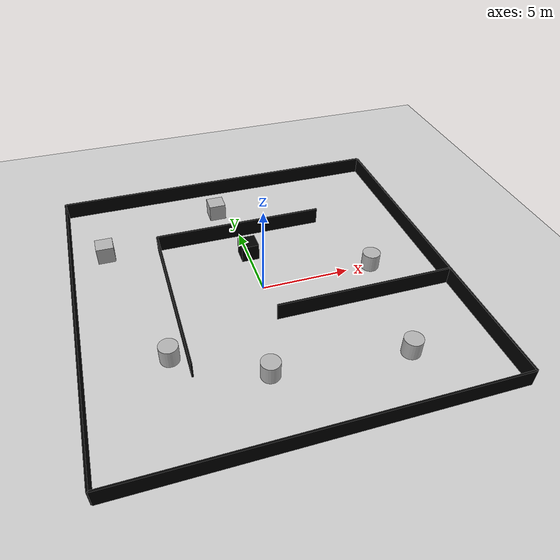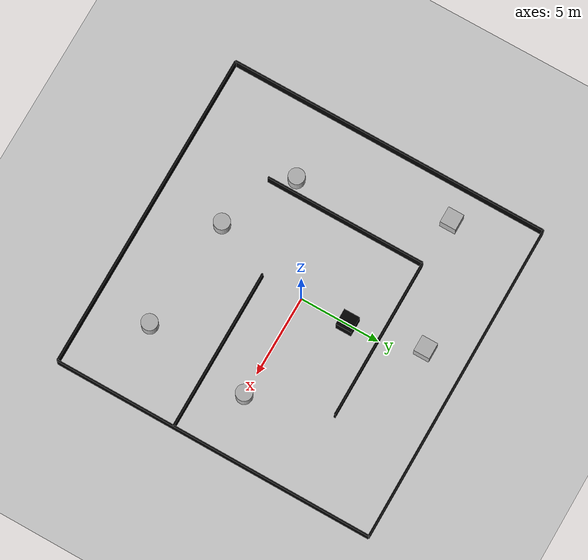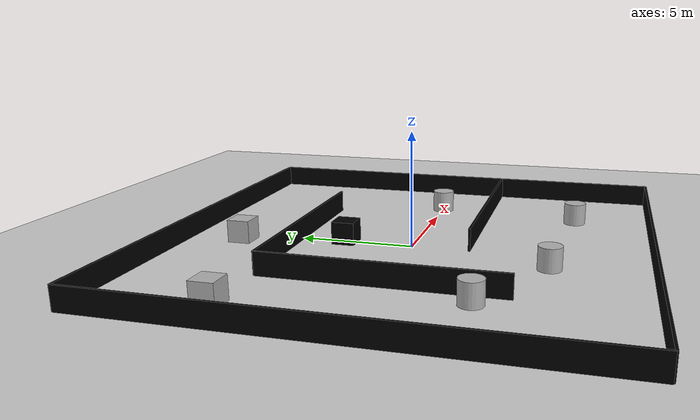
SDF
<sdf version='1.10'>
  <world name='empty_world'>
    <physics name='1ms' type='ignored'>
      <max_step_size>0.001</max_step_size>
      <real_time_factor>1</real_time_factor>
      <real_time_update_rate>1000</real_time_update_rate>
      <contact_surface_layer>0.001</contact_surface_layer>
    </physics>
    <plugin name='gz::sim::systems::Physics' filename='gz-sim-physics-system'/>
    <plugin name='gz::sim::systems::Sensors' filename='gz-sim-sensors-system'>
      <render_engine>ogre2</render_engine>
    </plugin>
    <plugin name="gz::sim::systems::Imu" filename="gz-sim-imu-system" />
    <plugin name='gz::sim::systems::SceneBroadcaster' filename='gz-sim-scene-broadcaster-system'/>
    <plugin name='gz::sim::systems::UserCommands' filename='gz-sim-user-commands-system'/>

    <gravity>0 0 -9.8000000000000007</gravity>
    <magnetic_field>5.5644999999999998e-06 2.2875799999999999e-05 -4.2388400000000002e-05</magnetic_field>
    <atmosphere type='adiabatic'/>
    <scene>
      <ambient>0.400000006 0.400000006 0.400000006 1</ambient>
      <background>0.699999988 0.699999988 0.699999988 1</background>
      <shadows>true</shadows>
    </scene>
    <model name='ground_plane'>
      <static>true</static>
      <link name='link'>
        <collision name='collision'>
          <geometry>
            <plane>
              <normal>0 0 1</normal>
              <size>100 100</size>
            </plane>
          </geometry>
        <surface>
          <friction>
            <ode>
              <mu>100</mu>
              <mu2>100</mu2>
            </ode>
          </friction>
        </surface>
        </collision>
        <visual name='visual'>
          <geometry>
            <plane>
              <normal>0 0 1</normal>
              <size>100 100</size>
            </plane>
          </geometry>
          <material>
            <ambient>0.800000012 0.800000012 0.800000012 1</ambient>
            <diffuse>0.800000012 0.800000012 0.800000012 1</diffuse>
            <specular>0.800000012 0.800000012 0.800000012 1</specular>
          </material>
        </visual>
        <pose>0 0 0 0 0 0</pose>
        <inertial>
          <pose>0 0 0 0 0 0</pose>
          <mass>1</mass>
          <inertia>
            <ixx>1</ixx>
            <ixy>0</ixy>
            <ixz>0</ixz>
            <iyy>1</iyy>
            <iyz>0</iyz>
            <izz>1</izz>
          </inertia>
        </inertial>
        <enable_wind>false</enable_wind>
      </link>
      <pose>0 0 0 0 0 0</pose>
      <self_collide>false</self_collide>
    </model>

    <model name='right_wall'>
      <pose>0 -10 0.5 0 0 0</pose>
      <link name='box_link'>
        <inertial>
          <inertia>
            <ixx>0.16666</ixx>
            <ixy>0</ixy>
            <ixz>0</ixz>
            <iyy>0.16666</iyy>
            <iyz>0</iyz>
            <izz>0.16666</izz>
          </inertia>
          <mass>1000</mass>
          <pose>0 0 0 0 0 0</pose>
        </inertial>
        <collision name='box_collision'>
          <geometry>
            <box>
              <size>20 0.10000000000000001 1</size>
            </box>
          </geometry>
          <surface>
            <friction>
              <ode/>
            </friction>
            <bounce/>
            <contact/>
          </surface>
        </collision>
        <visual name='box_visual'>
          <geometry>
            <box>
              <size>20 0.10000000000000001 1</size>
            </box>
          </geometry>
          <material>
            <ambient>0 0 0 1</ambient>
            <diffuse>0 0 0 1</diffuse>
            <specular>0 0 0 1</specular>
          </material>
        </visual>
        <pose>0 0 0 0 0 0</pose>
        <enable_wind>false</enable_wind>
      </link>
      <static>true</static>
      <self_collide>false</self_collide>
    </model>

    <model name='left_wall'>
      <pose>0 10 0.5 0 0 0</pose>
      <link name='box_link'>
        <inertial>
          <inertia>
            <ixx>0.16666</ixx>
            <ixy>0</ixy>
            <ixz>0</ixz>
            <iyy>0.16666</iyy>
            <iyz>0</iyz>
            <izz>0.16666</izz>
          </inertia>
          <mass>1000</mass>
          <pose>0 0 0 0 0 0</pose>
        </inertial>
        <collision name='box_collision'>
          <geometry>
            <box>
              <size>20 0.10000000000000001 1</size>
            </box>
          </geometry>
          <surface>
            <friction>
              <ode/>
            </friction>
            <bounce/>
            <contact/>
          </surface>
        </collision>
        <visual name='box_visual'>
          <geometry>
            <box>
              <size>20 0.10000000000000001 1</size>
            </box>
          </geometry>
          <material>
            <ambient>0 0 0 1</ambient>
            <diffuse>0 0 0 1</diffuse>
            <specular>0 0 0 1</specular>
          </material>
        </visual>
        <pose>0 0 0 0 0 0</pose>
        <enable_wind>false</enable_wind>
      </link>
      <static>true</static>
      <self_collide>false</self_collide>
    </model>

    <model name='north_wall'>
      <pose>10 0 0.5 0 0 1.5699999999999998</pose>
      <link name='box_link'>
        <inertial>
          <inertia>
            <ixx>0.16666</ixx>
            <ixy>0</ixy>
            <ixz>0</ixz>
            <iyy>0.16666</iyy>
            <iyz>0</iyz>
            <izz>0.16666</izz>
          </inertia>
          <mass>1</mass>
          <pose>0 0 0 0 0 0</pose>
        </inertial>
        <collision name='box_collision'>
          <geometry>
            <box>
              <size>20 0.10000000000000001 1</size>
            </box>
          </geometry>
          <surface>
            <friction>
              <ode/>
            </friction>
            <bounce/>
            <contact/>
          </surface>
        </collision>
        <visual name='box_visual'>
          <geometry>
            <box>
              <size>20 0.10000000000000001 1</size>
            </box>
          </geometry>
          <material>
            <ambient>0 0 0 1</ambient>
            <diffuse>0 0 0 1</diffuse>
            <specular>0 0 0 1</specular>
          </material>
        </visual>
        <pose>0 0 0 0 0 0</pose>
        <enable_wind>false</enable_wind>
      </link>
      <static>true</static>
      <self_collide>false</self_collide>
    </model>

    <model name='south_wall'>
      <pose>-10 0 0.5 0 0 1.5699999999999998</pose>
      <link name='box_link'>
        <inertial>
          <inertia>
            <ixx>0.16666</ixx>
            <ixy>0</ixy>
            <ixz>0</ixz>
            <iyy>0.16666</iyy>
            <iyz>0</iyz>
            <izz>0.16666</izz>
          </inertia>
          <mass>1000</mass>
          <pose>0 0 0 0 0 0</pose>
        </inertial>
        <collision name='box_collision'>
          <geometry>
            <box>
              <size>20 0.10000000000000001 1</size>
            </box>
          </geometry>
          <surface>
            <friction>
              <ode/>
            </friction>
            <bounce/>
            <contact/>
          </surface>
        </collision>
        <visual name='box_visual'>
          <geometry>
            <box>
              <size>20 0.10000000000000001 1</size>
            </box>
          </geometry>
          <material>
            <ambient>0 0 0 1</ambient>
            <diffuse>0 0 0 1</diffuse>
            <specular>0 0 0 1</specular>
          </material>
        </visual>
        <pose>0 0 0 0 0 0</pose>
        <enable_wind>false</enable_wind>
      </link>
      <static>true</static>
      <self_collide>false</self_collide>
    </model>

    <model name='wall_1'>
      <pose>-5 0 0.5 0 0 1.5699999999999998</pose>
      <link name='box_link'>
        <inertial>
          <inertia>
            <ixx>0.16666</ixx>
            <ixy>0</ixy>
            <ixz>0</ixz>
            <iyy>0.16666</iyy>
            <iyz>0</iyz>
            <izz>0.16666</izz>
          </inertia>
          <mass>1000</mass>
          <pose>0 0 0 0 0 0</pose>
        </inertial>
        <collision name='box_collision'>
          <geometry>
            <box>
              <size>10 0.10000000000000001 1</size>
            </box>
          </geometry>
          <surface>
            <friction>
              <ode/>
            </friction>
            <bounce/>
            <contact/>
          </surface>
        </collision>
        <visual name='box_visual'>
          <geometry>
            <box>
              <size>10 0.10000000000000001 1</size>
            </box>
          </geometry>
          <material>
            <ambient>0 0 0 1</ambient>
            <diffuse>0 0 0 1</diffuse>
            <specular>0 0 0 1</specular>
          </material>
        </visual>
        <pose>0 0 0 0 0 0</pose>
        <enable_wind>false</enable_wind>
      </link>
      <static>true</static>
      <self_collide>false</self_collide>
    </model>
    <model name='wall_2'>
      <pose>0 5 0.5 0 0 0</pose>
      <link name='box_link'>
        <inertial>
          <inertia>
            <ixx>0.16666</ixx>
            <ixy>0</ixy>
            <ixz>0</ixz>
            <iyy>0.16666</iyy>
            <iyz>0</iyz>
            <izz>0.16666</izz>
          </inertia>
          <mass>1000</mass>
          <pose>0 0 0 0 0 0</pose>
        </inertial>
        <collision name='box_collision'>
          <geometry>
            <box>
              <size>10 0.10000000000000001 1</size>
            </box>
          </geometry>
          <surface>
            <friction>
              <ode/>
            </friction>
            <bounce/>
            <contact/>
          </surface>
        </collision>
        <visual name='box_visual'>
          <geometry>
            <box>
              <size>10 0.10000000000000001 1</size>
            </box>
          </geometry>
          <material>
            <ambient>0 0 0 1</ambient>
            <diffuse>0 0 0 1</diffuse>
            <specular>0 0 0 1</specular>
          </material>
        </visual>
        <pose>0 0 0 0 0 0</pose>
        <enable_wind>false</enable_wind>
      </link>
      <static>true</static>
      <self_collide>false</self_collide>
    </model>
    <model name='wall_3'>
      <pose>5 -2.5 0.5 0 0 0</pose>
      <link name='box_link'>
        <inertial>
          <inertia>
            <ixx>0.16666</ixx>
            <ixy>0</ixy>
            <ixz>0</ixz>
            <iyy>0.16666</iyy>
            <iyz>0</iyz>
            <izz>0.16666</izz>
          </inertia>
          <mass>1000</mass>
          <pose>0 0 0 0 0 0</pose>
        </inertial>
        <collision name='box_collision'>
          <geometry>
            <box>
              <size>10 0.10000000000000001 1</size>
            </box>
          </geometry>
          <surface>
            <friction>
              <ode/>
            </friction>
            <bounce/>
            <contact/>
          </surface>
        </collision>
        <visual name='box_visual'>
          <geometry>
            <box>
              <size>10 0.10000000000000001 1</size>
            </box>
          </geometry>
          <material>
            <ambient>0 0 0 1</ambient>
            <diffuse>0 0 0 1</diffuse>
            <specular>0 0 0 1</specular>
          </material>
        </visual>
        <pose>0 0 0 0 0 0</pose>
        <enable_wind>false</enable_wind>
      </link>
      <static>true</static>
      <self_collide>false</self_collide>
    </model>
    <model name='box1'>
      <pose>0 3 0.5 0 0 0</pose>
      <link name='box_link'>
        <inertial>
          <inertia>
            <ixx>0.16666</ixx>
            <ixy>0</ixy>
            <ixz>0</ixz>
            <iyy>0.16666</iyy>
            <iyz>0</iyz>
            <izz>0.16666</izz>
          </inertia>
          <mass>1000</mass>
          <pose>0 0 0 0 0 0</pose>
        </inertial>
        <collision name='box_collision'>
          <geometry>
            <box>
              <size>1 1 1</size>
            </box>
          </geometry>
          <surface>
            <friction>
              <ode/>
            </friction>
            <bounce/>
            <contact/>
          </surface>
        </collision>
        <visual name='box_visual'>
          <geometry>
            <box>
              <size>1 1 1</size>
            </box>
          </geometry>
          <material>
            <ambient>0 0 0 1</ambient>
            <diffuse>0 0 0 1</diffuse>
            <specular>0 0 0 1</specular>
          </material>
        </visual>
        <pose>0 0 0 0 0 0</pose>
        <enable_wind>false</enable_wind>
      </link>
      <static>true</static>
      <self_collide>false</self_collide>
    </model>
    <model name='cylinder'>
      <pose>6.429601041310411 -0.0052366549875297874 0.5 0 0 0</pose>
      <link name='cylinder_link'>
        <inertial>
          <inertia>
            <ixx>0.14580000000000001</ixx>
            <ixy>0</ixy>
            <ixz>0</ixz>
            <iyy>0.14580000000000001</iyy>
            <iyz>0</iyz>
            <izz>0.125</izz>
          </inertia>
          <mass>1000</mass>
          <pose>0 0 0 0 0 0</pose>
        </inertial>
        <collision name='cylinder_collision'>
          <geometry>
            <cylinder>
              <radius>0.5</radius>
              <length>1</length>
            </cylinder>
          </geometry>
          <surface>
            <friction>
              <ode/>
            </friction>
            <bounce/>
            <contact/>
          </surface>
        </collision>
        <visual name='cylinder_visual'>
          <geometry>
            <cylinder>
              <radius>0.5</radius>
              <length>1</length>
            </cylinder>
          </geometry>
          <material>
            <ambient>0.300000012 0.300000012 0.300000012 1</ambient>
            <diffuse>0.699999988 0.699999988 0.699999988 1</diffuse>
            <specular>1 1 1 1</specular>
          </material>
        </visual>
        <pose>0 0 0 0 0 0</pose>
        <enable_wind>false</enable_wind>
      </link>
      <static>true</static>
      <self_collide>false</self_collide>
    </model>
    <model name='box'>
      <pose>-0.85759176379498214 7.5293147780328367 0.5 0 0 0</pose>
      <link name='box_link'>
        <inertial>
          <inertia>
            <ixx>0.16666</ixx>
            <ixy>0</ixy>
            <ixz>0</ixz>
            <iyy>0.16666</iyy>
            <iyz>0</iyz>
            <izz>0.16666</izz>
          </inertia>
          <mass>1000</mass>
          <pose>0 0 0 0 0 0</pose>
        </inertial>
        <collision name='box_collision'>
          <geometry>
            <box>
              <size>1 1 1</size>
            </box>
          </geometry>
          <surface>
            <friction>
              <ode/>
            </friction>
            <bounce/>
            <contact/>
          </surface>
        </collision>
        <visual name='box_visual'>
          <geometry>
            <box>
              <size>1 1 1</size>
            </box>
          </geometry>
          <material>
            <ambient>0.300000012 0.300000012 0.300000012 1</ambient>
            <diffuse>0.699999988 0.699999988 0.699999988 1</diffuse>
            <specular>1 1 1 1</specular>
          </material>
        </visual>
        <pose>0 0 0 0 0 0</pose>
        <enable_wind>false</enable_wind>
      </link>
      <static>true</static>
      <self_collide>false</self_collide>
    </model>
    <model name='cylinder_0'>
      <pose>-1.4677105198146103 -5.9859528336802033 0.5 0 0 0</pose>
      <link name='cylinder_link'>
        <inertial>
          <inertia>
            <ixx>0.14580000000000001</ixx>
            <ixy>0</ixy>
            <ixz>0</ixz>
            <iyy>0.14580000000000001</iyy>
            <iyz>0</iyz>
            <izz>0.125</izz>
          </inertia>
          <mass>1000</mass>
          <pose>0 0 0 0 0 0</pose>
        </inertial>
        <collision name='cylinder_collision'>
          <geometry>
            <cylinder>
              <radius>0.5</radius>
              <length>1</length>
            </cylinder>
          </geometry>
          <surface>
            <friction>
              <ode/>
            </friction>
            <bounce/>
            <contact/>
          </surface>
        </collision>
        <visual name='cylinder_visual'>
          <geometry>
            <cylinder>
              <radius>0.5</radius>
              <length>1</length>
            </cylinder>
          </geometry>
          <material>
            <ambient>0.300000012 0.300000012 0.300000012 1</ambient>
            <diffuse>0.699999988 0.699999988 0.699999988 1</diffuse>
            <specular>1 1 1 1</specular>
          </material>
        </visual>
        <pose>0 0 0 0 0 0</pose>
        <enable_wind>false</enable_wind>
      </link>
      <static>true</static>
      <self_collide>false</self_collide>
    </model>
    <model name='box_0'>
      <pose>-8.045198395430992 5.2006278361208551 0.5 0 0 0</pose>
      <link name='box_link'>
        <inertial>
          <inertia>
            <ixx>0.16666</ixx>
            <ixy>0</ixy>
            <ixz>0</ixz>
            <iyy>0.16666</iyy>
            <iyz>0</iyz>
            <izz>0.16666</izz>
          </inertia>
          <mass>1000</mass>
          <pose>0 0 0 0 0 0</pose>
        </inertial>
        <collision name='box_collision'>
          <geometry>
            <box>
              <size>1 1 1</size>
            </box>
          </geometry>
          <surface>
            <friction>
              <ode/>
            </friction>
            <bounce/>
            <contact/>
          </surface>
        </collision>
        <visual name='box_visual'>
          <geometry>
            <box>
              <size>1 1 1</size>
            </box>
          </geometry>
          <material>
            <ambient>0.300000012 0.300000012 0.300000012 1</ambient>
            <diffuse>0.699999988 0.699999988 0.699999988 1</diffuse>
            <specular>1 1 1 1</specular>
          </material>
        </visual>
        <pose>0 0 0 0 0 0</pose>
        <enable_wind>false</enable_wind>
      </link>
      <static>true</static>
      <self_collide>false</self_collide>
    </model>
    <model name='cylinder_1'>
      <pose>-5.8397370494517986 -3.6283204252111361 0.5 0 0 0</pose>
      <link name='cylinder_link'>
        <inertial>
          <inertia>
            <ixx>0.14580000000000001</ixx>
            <ixy>0</ixy>
            <ixz>0</ixz>
            <iyy>0.14580000000000001</iyy>
            <iyz>0</iyz>
            <izz>0.125</izz>
          </inertia>
          <mass>1000</mass>
          <pose>0 0 0 0 0 0</pose>
        </inertial>
        <collision name='cylinder_collision'>
          <geometry>
            <cylinder>
              <radius>0.5</radius>
              <length>1</length>
            </cylinder>
          </geometry>
          <surface>
            <friction>
              <ode/>
            </friction>
            <bounce/>
            <contact/>
          </surface>
        </collision>
        <visual name='cylinder_visual'>
          <geometry>
            <cylinder>
              <radius>0.5</radius>
              <length>1</length>
            </cylinder>
          </geometry>
          <material>
            <ambient>0.300000012 0.300000012 0.300000012 1</ambient>
            <diffuse>0.699999988 0.699999988 0.699999988 1</diffuse>
            <specular>1 1 1 1</specular>
          </material>
        </visual>
        <pose>0 0 0 0 0 0</pose>
        <enable_wind>false</enable_wind>
      </link>
      <static>true</static>
      <self_collide>false</self_collide>
    </model>

    <model name='cylinder_2'>
      <pose>5.5618637730693568 -6.6135818495044498 0.5 0 0 0</pose>
      <link name='cylinder_link'>
        <inertial>
          <inertia>
            <ixx>0.14580000000000001</ixx>
            <ixy>0</ixy>
            <ixz>0</ixz>
            <iyy>0.14580000000000001</iyy>
            <iyz>0</iyz>
            <izz>0.125</izz>
          </inertia>
          <mass>1000</mass>
          <pose>0 0 0 0 0 0</pose>
        </inertial>
        <collision name='cylinder_collision'>
          <geometry>
            <cylinder>
              <radius>0.5</radius>
              <length>1</length>
            </cylinder>
          </geometry>
          <surface>
            <friction>
              <ode/>
            </friction>
            <bounce/>
            <contact/>
          </surface>
        </collision>
        <visual name='cylinder_visual'>
          <geometry>
            <cylinder>
              <radius>0.5</radius>
              <length>1</length>
            </cylinder>
          </geometry>
          <material>
            <ambient>0.300000012 0.300000012 0.300000012 1</ambient>
            <diffuse>0.699999988 0.699999988 0.699999988 1</diffuse>
            <specular>1 1 1 1</specular>
          </material>
        </visual>
        <pose>0 0 0 0 0 0</pose>
        <enable_wind>false</enable_wind>
      </link>
      <static>true</static>
      <self_collide>false</self_collide>
    </model>

    <light name='sun' type='directional'>
      <pose>0 0 10 0 0 0</pose>
      <cast_shadows>true</cast_shadows>
      <intensity>1</intensity>
      <direction>-0.5 0.10000000000000001 -0.90000000000000002</direction>
      <diffuse>0.800000012 0.800000012 0.800000012 1</diffuse>
      <specular>0.200000003 0.200000003 0.200000003 1</specular>
      <attenuation>
        <range>1000</range>
        <linear>0.01</linear>
        <constant>0.90000000000000002</constant>
        <quadratic>0.001</quadratic>
      </attenuation>
      <spot>
        <inner_angle>0</inner_angle>
        <outer_angle>0</outer_angle>
        <falloff>0</falloff>
      </spot>
    </light>
  </world>
</sdf>
